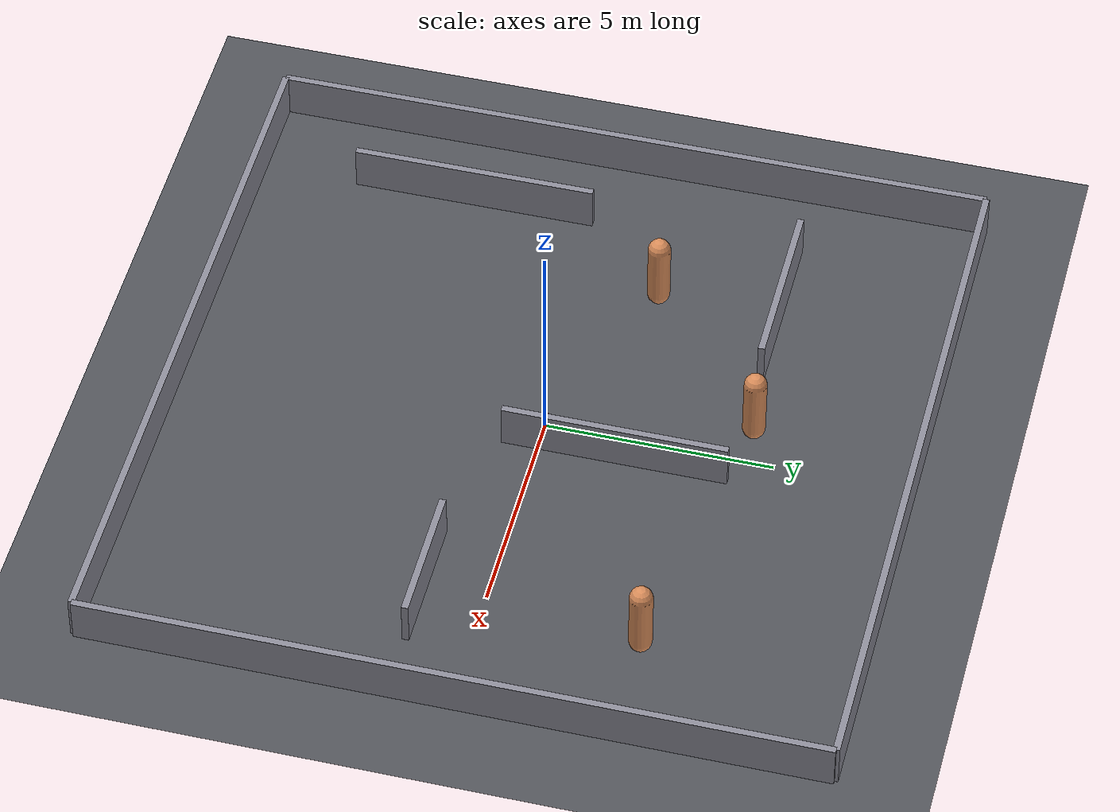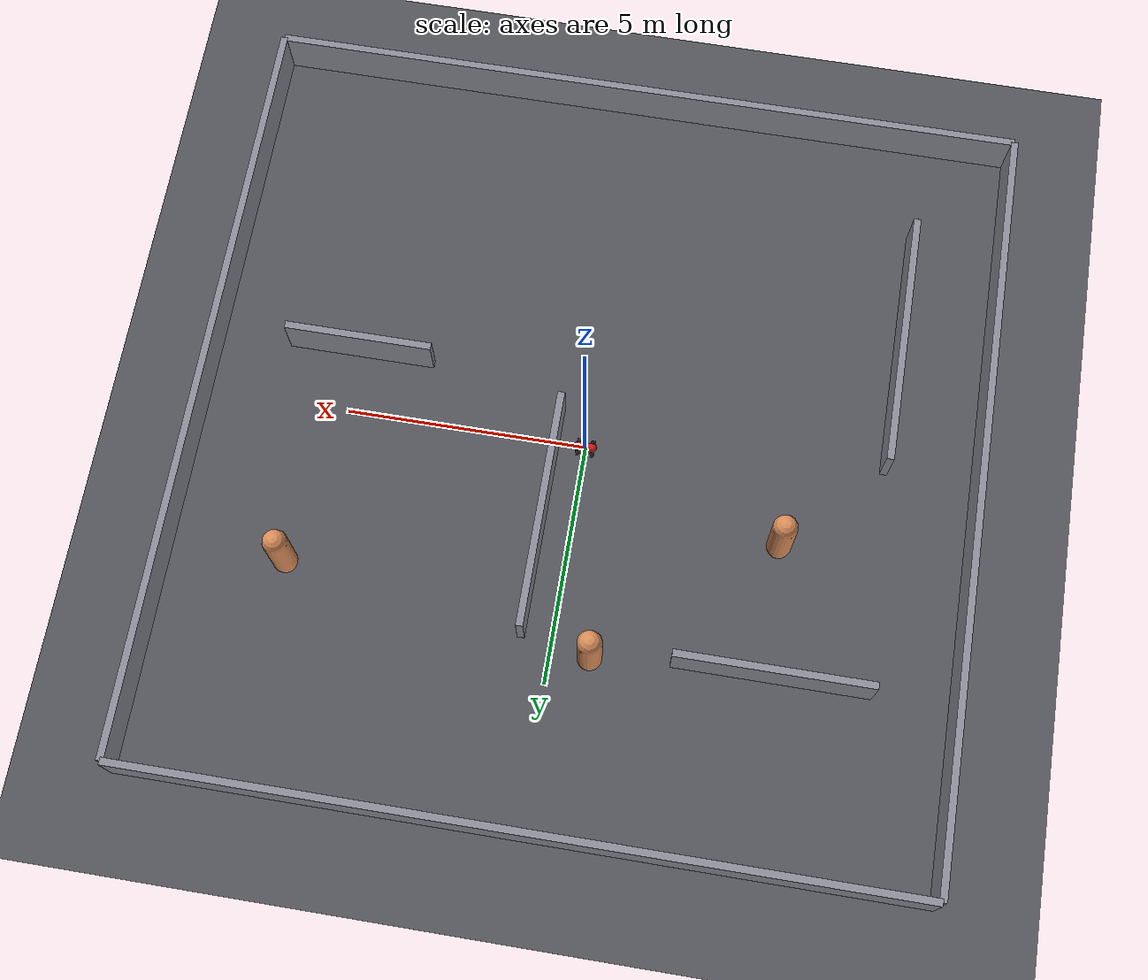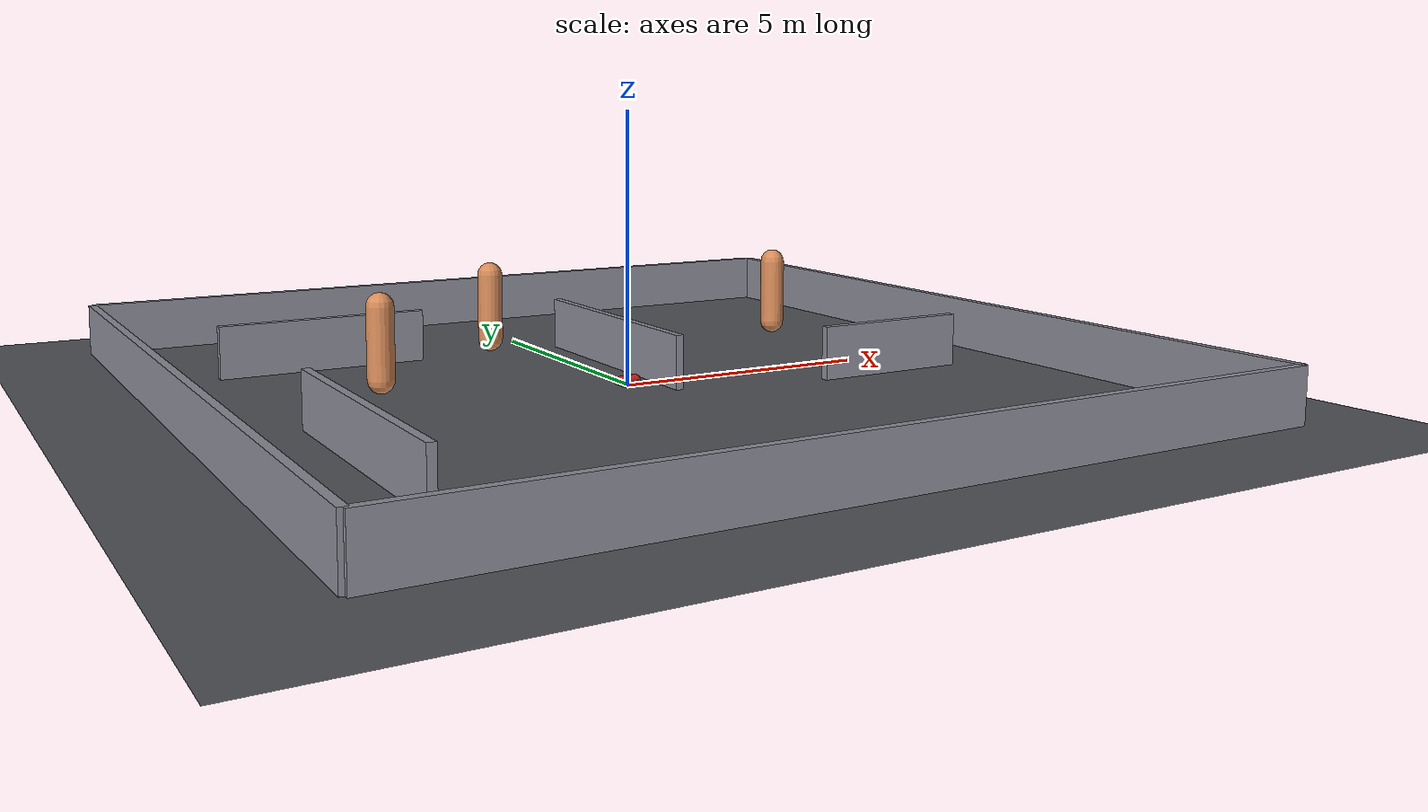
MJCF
<mujoco model="ackermann_car_room">
  <compiler angle="radian"/>
  <option timestep="0.002" gravity="0 0 -9.81" iterations="4" cone="pyramidal"/>

  <default>
    <joint damping="0.05"/>
    <geom friction="2.0 0.1 0.1" contype="1" conaffinity="1"/>
  </default>

  <worldbody>
    <light name="ceiling" pos="0 0 6" dir="0 0 -1" diffuse="0.8 0.8 0.8"/>
    <geom name="floor" type="plane" size="10.0 10.0 0.1" rgba="0.32 0.33 0.35 1"/>
    <geom name="wall_0" type="box" size="8.0000 0.0750 0.5000" pos="0.0000 -8.0000 0.5000" rgba="0.55 0.55 0.60 1"/>
    <geom name="wall_1" type="box" size="8.0000 0.0750 0.5000" pos="0.0000 8.0000 0.5000" rgba="0.55 0.55 0.60 1"/>
    <geom name="wall_2" type="box" size="0.0750 8.0000 0.5000" pos="-8.0000 0.0000 0.5000" rgba="0.55 0.55 0.60 1"/>
    <geom name="wall_3" type="box" size="0.0750 8.0000 0.5000" pos="8.0000 0.0000 0.5000" rgba="0.55 0.55 0.60 1"/>
    <geom name="wall_4" type="box" size="2.0044 0.0750 0.5000" pos="-4.3948 4.1759 0.5000" rgba="0.55 0.55 0.60 1"/>
    <geom name="wall_5" type="box" size="1.5310 0.0750 0.5000" pos="4.9690 -1.3341 0.5000" rgba="0.55 0.55 0.60 1"/>
    <geom name="wall_6" type="box" size="0.0750 2.4629 0.5000" pos="0.6255 1.6760 0.5000" rgba="0.55 0.55 0.60 1"/>
    <geom name="wall_7" type="box" size="0.0750 2.7051 0.5000" pos="-6.1315 -3.1434 0.5000" rgba="0.55 0.55 0.60 1"/>
    <body name="human_0" mocap="true" pos="-4.1908 1.5059 0.9130">
      <geom name="human_geom_0" type="capsule" size="0.250 0.663" rgba="0.85 0.55 0.35 1" contype="0" conaffinity="0"/>
    </body>
    <body name="human_1" mocap="true" pos="5.5435 3.4075 0.9130">
      <geom name="human_geom_1" type="capsule" size="0.250 0.663" rgba="0.85 0.55 0.35 1" contype="0" conaffinity="0"/>
    </body>
    <body name="human_2" mocap="true" pos="-0.8039 4.3839 0.9130">
      <geom name="human_geom_2" type="capsule" size="0.250 0.663" rgba="0.85 0.55 0.35 1" contype="0" conaffinity="0"/>
    </body>

    <body name="chassis" pos="0 0 0.1">
      <freejoint name="chassis_free"/>
      <geom name="chassis_geom" type="capsule" size="0.09" fromto="-0.15 0 0 0.15 0 0" mass="3.0" rgba="0.8 0.1 0.1 1"/>

      <body name="wheel_fl" pos="0.1483 0.115 -0.05">
        <joint name="steer_fl" type="hinge" axis="0 0 1" range="-0.6 0.6" limited="true" damping="1.0"/>
        <geom name="knuckle_fl_geom" type="sphere" size="0.01" mass="0.05" rgba="0.2 0.2 0.2 1"/>
        <body name="wheel_fl_spin">
          <joint name="spin_fl" type="hinge" axis="0 1 0" damping="0.001"/>
          <geom name="wheel_fl_geom" type="capsule" size="0.05" fromto="0 -0.0215 0 0 0.0215 0" mass="0.1" rgba="0.1 0.1 0.1 1"/>
        </body>
      </body>
      <body name="wheel_fr" pos="0.1483 -0.115 -0.05">
        <joint name="steer_fr" type="hinge" axis="0 0 1" range="-0.6 0.6" limited="true" damping="1.0"/>
        <geom name="knuckle_fr_geom" type="sphere" size="0.01" mass="0.05" rgba="0.2 0.2 0.2 1"/>
        <body name="wheel_fr_spin">
          <joint name="spin_fr" type="hinge" axis="0 1 0" damping="0.001"/>
          <geom name="wheel_fr_geom" type="capsule" size="0.05" fromto="0 -0.0215 0 0 0.0215 0" mass="0.1" rgba="0.1 0.1 0.1 1"/>
        </body>
      </body>
      <body name="wheel_rl" pos="-0.1483 0.115 -0.05">
        <joint name="spin_rl" type="hinge" axis="0 1 0" damping="0.001"/>
        <geom name="wheel_rl_geom" type="capsule" size="0.05" fromto="0 -0.0215 0 0 0.0215 0" mass="0.1" rgba="0.1 0.1 0.1 1"/>
      </body>
      <body name="wheel_rr" pos="-0.1483 -0.115 -0.05">
        <joint name="spin_rr" type="hinge" axis="0 1 0" damping="0.001"/>
        <geom name="wheel_rr_geom" type="capsule" size="0.05" fromto="0 -0.0215 0 0 0.0215 0" mass="0.1" rgba="0.1 0.1 0.1 1"/>
      </body>
    </body>
  </worldbody>

  <equality>
    <joint joint1="steer_fl" joint2="steer_fr"/>
  </equality>

  <actuator>
    <position name="steer" joint="steer_fl" kp="80" ctrlrange="-0.6 0.6" forcerange="-20 20"/>
    <motor name="throttle_rl" joint="spin_rl" gear="0.78" ctrlrange="-1 1"/>
    <motor name="throttle_rr" joint="spin_rr" gear="0.78" ctrlrange="-1 1"/>
  </actuator>
</mujoco>
